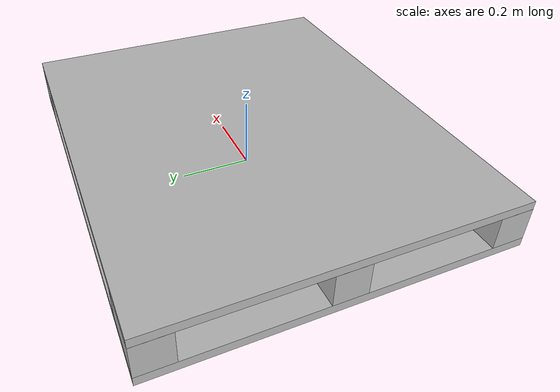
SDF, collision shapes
<?xml version="1.0" ?>
<sdf version="1.6">
    <model name="Pallet_Standard">
        <link name="base_link">
            <visual name="base_visual">
                <geometry>
                    <mesh>
                        <uri>base_visual.glb</uri>
                    </mesh>
                </geometry>
            </visual>
            <collision name="box006009_collider_box">
                <pose>-0.52 -0.4525 0.072405 0.0 -0.0 0.0</pose>
                <geometry>
                    <box>
                        <size>0.16 0.095 0.094811</size>
                    </box>
                </geometry>
            </collision>
            <collision name="box006012_collider_box">
                <pose>0.52 -0.4525 0.072405 0.0 -0.0 0.0</pose>
                <geometry>
                    <box>
                        <size>0.16 0.095 0.094811</size>
                    </box>
                </geometry>
            </collision>
            <collision name="box006013_collider_box">
                <pose>-0.52 0.4525 0.072405 0.0 -0.0 0.0</pose>
                <geometry>
                    <box>
                        <size>0.16 0.095 0.094811</size>
                    </box>
                </geometry>
            </collision>
            <collision name="box006014_collider_box">
                <pose>0.52 0.4525 0.072405 0.0 -0.0 0.0</pose>
                <geometry>
                    <box>
                        <size>0.16 0.095 0.094811</size>
                    </box>
                </geometry>
            </collision>
            <collision name="box006021_collider_box">
                <pose>-0.52 -0.0 0.072405 0.0 -0.0 0.0</pose>
                <geometry>
                    <box>
                        <size>0.16 0.095 0.094811</size>
                    </box>
                </geometry>
            </collision>
            <collision name="box006022_collider_box">
                <pose>0.52 -0.0 0.072405 0.0 -0.0 0.0</pose>
                <geometry>
                    <box>
                        <size>0.16 0.095 0.094811</size>
                    </box>
                </geometry>
            </collision>
            <collision name="box006024_collider_box">
                <pose>0.0 -0.0 0.0125 0.0 -0.0 0.0</pose>
                <geometry>
                    <box>
                        <size>1.2 1.0 0.025</size>
                    </box>
                </geometry>
            </collision>
            <collision name="box006024_collider_box.001">
                <pose>0.0 -0.0 0.1325 0.0 -0.0 0.0</pose>
                <geometry>
                    <box>
                        <size>1.2 1.0 0.025</size>
                    </box>
                </geometry>
            </collision>
        </link>
    </model>
</sdf>
